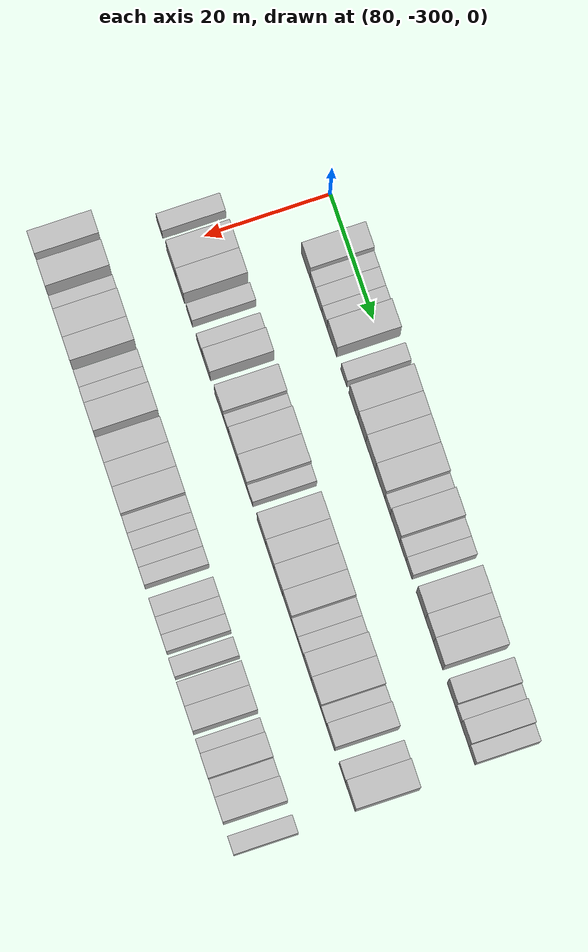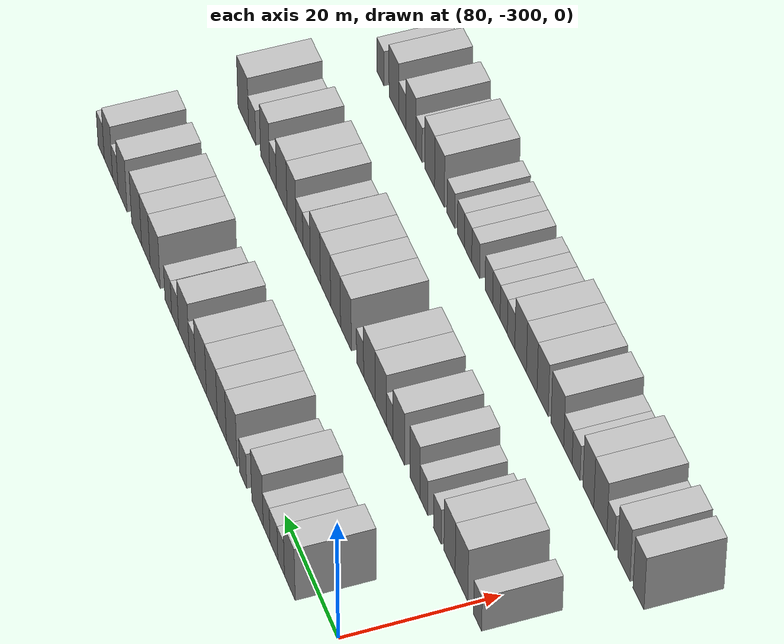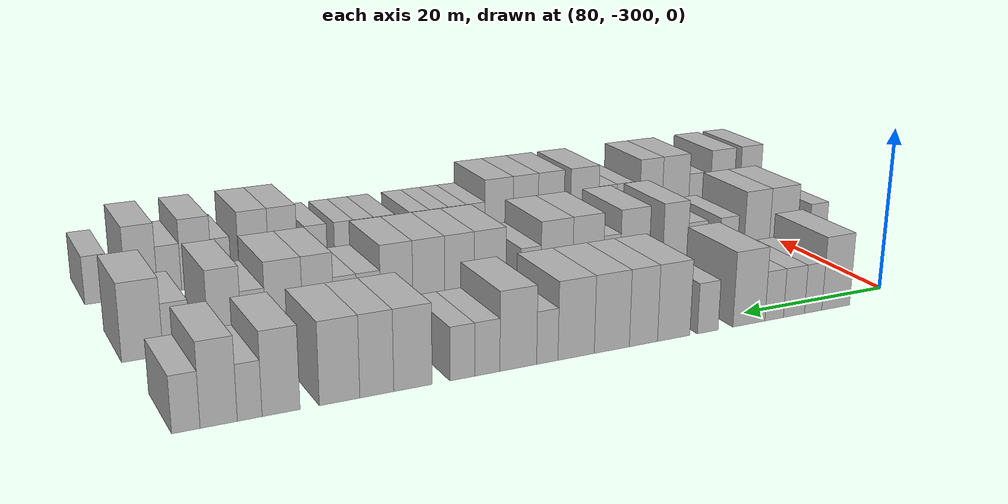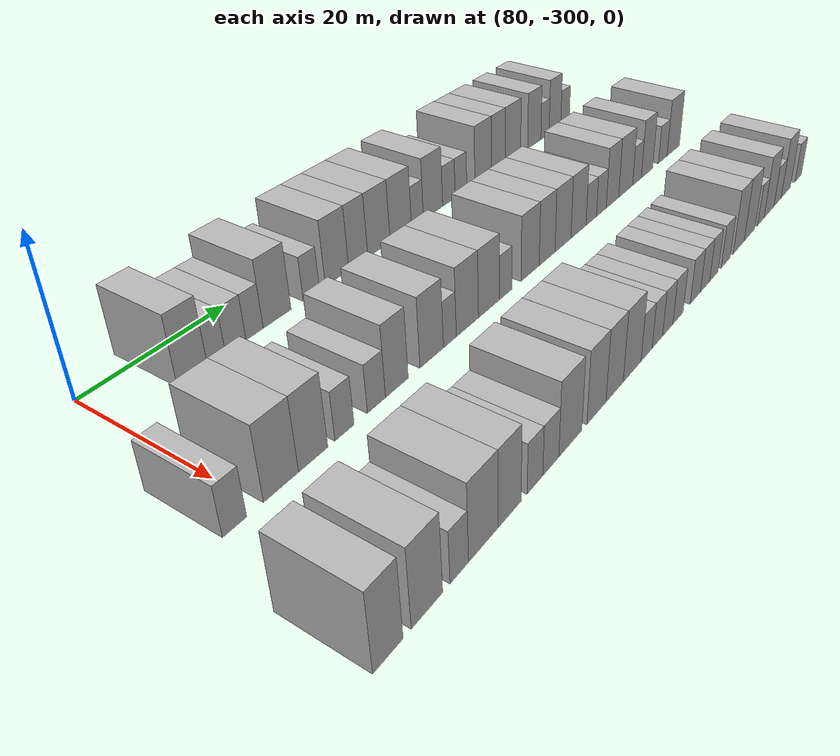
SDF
<sdf version="1.6">
 <world name="default">
  <model name="building_542">
   <static>1</static>
   <pose>82.0000 -290.8917 0 0.000000 0.000000 0.000000</pose>
   <link name="link">
    <pose>0 0 4.50 0 0 0</pose>
    <collision name="collision"><geometry><box><size>10.0000 4.0627 9.0000</size></box></geometry></collision>
    <visual name="visual">
     <cast_shadows>0</cast_shadows>
     <geometry><box><size>10.0000 4.0627 9.0000</size></box></geometry>
     <material>
      <script>
       <uri>model://HANNAS_wall/materials/scripts</uri>
       <uri>model://HANNAS_wall/materials/textures</uri>
       <name>vrc/HANNAS_wall</name>
      </script>
     </material>
    </visual>
   </link>
  </model>
  <model name="building_543">
   <static>1</static>
   <pose>82.0000 -287.6085 0 0.000000 0.000000 0.000000</pose>
   <link name="link">
    <pose>0 0 3.00 0 0 0</pose>
    <collision name="collision"><geometry><box><size>10.0000 2.5038 6.0000</size></box></geometry></collision>
    <visual name="visual">
     <cast_shadows>0</cast_shadows>
     <geometry><box><size>10.0000 2.5038 6.0000</size></box></geometry>
     <material>
      <script>
       <uri>model://HANNAS_wall/materials/scripts</uri>
       <uri>model://HANNAS_wall/materials/textures</uri>
       <name>vrc/HANNAS_wall</name>
      </script>
     </material>
    </visual>
   </link>
  </model>
  <model name="building_544">
   <static>1</static>
   <pose>82.0000 -284.8606 0 0.000000 0.000000 0.000000</pose>
   <link name="link">
    <pose>0 0 3.00 0 0 0</pose>
    <collision name="collision"><geometry><box><size>10.0000 2.9918 6.0000</size></box></geometry></collision>
    <visual name="visual">
     <cast_shadows>0</cast_shadows>
     <geometry><box><size>10.0000 2.9918 6.0000</size></box></geometry>
     <material>
      <script>
       <uri>model://HANNAS_wall/materials/scripts</uri>
       <uri>model://HANNAS_wall/materials/textures</uri>
       <name>vrc/HANNAS_wall</name>
      </script>
     </material>
    </visual>
   </link>
  </model>
  <model name="building_545">
   <static>1</static>
   <pose>82.0000 -282.0610 0 0.000000 0.000000 0.000000</pose>
   <link name="link">
    <pose>0 0 3.00 0 0 0</pose>
    <collision name="collision"><geometry><box><size>10.0000 2.6075 6.0000</size></box></geometry></collision>
    <visual name="visual">
     <cast_shadows>0</cast_shadows>
     <geometry><box><size>10.0000 2.6075 6.0000</size></box></geometry>
     <material>
      <script>
       <uri>model://HANNAS_wall/materials/scripts</uri>
       <uri>model://HANNAS_wall/materials/textures</uri>
       <name>vrc/HANNAS_wall</name>
      </script>
     </material>
    </visual>
   </link>
  </model>
  <model name="building_546">
   <static>1</static>
   <pose>82.0000 -278.5476 0 0.000000 0.000000 0.000000</pose>
   <link name="link">
    <pose>0 0 4.50 0 0 0</pose>
    <collision name="collision"><geometry><box><size>10.0000 4.4194 9.0000</size></box></geometry></collision>
    <visual name="visual">
     <cast_shadows>0</cast_shadows>
     <geometry><box><size>10.0000 4.4194 9.0000</size></box></geometry>
     <material>
      <script>
       <uri>model://HANNAS_wall/materials/scripts</uri>
       <uri>model://HANNAS_wall/materials/textures</uri>
       <name>vrc/HANNAS_wall</name>
      </script>
     </material>
    </visual>
   </link>
  </model>
  <model name="building_547">
   <static>1</static>
   <pose>82.0000 -272.9464 0 0.000000 0.000000 0.000000</pose>
   <link name="link">
    <pose>0 0 3.00 0 0 0</pose>
    <collision name="collision"><geometry><box><size>10.0000 2.7831 6.0000</size></box></geometry></collision>
    <visual name="visual">
     <cast_shadows>0</cast_shadows>
     <geometry><box><size>10.0000 2.7831 6.0000</size></box></geometry>
     <material>
      <script>
       <uri>model://HANNAS_wall/materials/scripts</uri>
       <uri>model://HANNAS_wall/materials/textures</uri>
       <name>vrc/HANNAS_wall</name>
      </script>
     </material>
    </visual>
   </link>
  </model>
  <model name="building_548">
   <static>1</static>
   <pose>82.0000 -268.4325 0 0.000000 0.000000 0.000000</pose>
   <link name="link">
    <pose>0 0 4.50 0 0 0</pose>
    <collision name="collision"><geometry><box><size>10.0000 4.2447 9.0000</size></box></geometry></collision>
    <visual name="visual">
     <cast_shadows>0</cast_shadows>
     <geometry><box><size>10.0000 4.2447 9.0000</size></box></geometry>
     <material>
      <script>
       <uri>model://HANNAS_wall/materials/scripts</uri>
       <uri>model://HANNAS_wall/materials/textures</uri>
       <name>vrc/HANNAS_wall</name>
      </script>
     </material>
    </visual>
   </link>
  </model>
  <model name="building_549">
   <static>1</static>
   <pose>82.0000 -264.5042 0 0.000000 0.000000 0.000000</pose>
   <link name="link">
    <pose>0 0 4.50 0 0 0</pose>
    <collision name="collision"><geometry><box><size>10.0000 3.6119 9.0000</size></box></geometry></collision>
    <visual name="visual">
     <cast_shadows>0</cast_shadows>
     <geometry><box><size>10.0000 3.6119 9.0000</size></box></geometry>
     <material>
      <script>
       <uri>model://HANNAS_wall/materials/scripts</uri>
       <uri>model://HANNAS_wall/materials/textures</uri>
       <name>vrc/HANNAS_wall</name>
      </script>
     </material>
    </visual>
   </link>
  </model>
  <model name="building_550">
   <static>1</static>
   <pose>82.0000 -260.4912 0 0.000000 0.000000 0.000000</pose>
   <link name="link">
    <pose>0 0 4.50 0 0 0</pose>
    <collision name="collision"><geometry><box><size>10.0000 4.4142 9.0000</size></box></geometry></collision>
    <visual name="visual">
     <cast_shadows>0</cast_shadows>
     <geometry><box><size>10.0000 4.4142 9.0000</size></box></geometry>
     <material>
      <script>
       <uri>model://HANNAS_wall/materials/scripts</uri>
       <uri>model://HANNAS_wall/materials/textures</uri>
       <name>vrc/HANNAS_wall</name>
      </script>
     </material>
    </visual>
   </link>
  </model>
  <model name="building_551">
   <static>1</static>
   <pose>82.0000 -256.0532 0 0.000000 0.000000 0.000000</pose>
   <link name="link">
    <pose>0 0 4.50 0 0 0</pose>
    <collision name="collision"><geometry><box><size>10.0000 4.4618 9.0000</size></box></geometry></collision>
    <visual name="visual">
     <cast_shadows>0</cast_shadows>
     <geometry><box><size>10.0000 4.4618 9.0000</size></box></geometry>
     <material>
      <script>
       <uri>model://HANNAS_wall/materials/scripts</uri>
       <uri>model://HANNAS_wall/materials/textures</uri>
       <name>vrc/HANNAS_wall</name>
      </script>
     </material>
    </visual>
   </link>
  </model>
  <model name="building_552">
   <static>1</static>
   <pose>82.0000 -252.5362 0 0.000000 0.000000 0.000000</pose>
   <link name="link">
    <pose>0 0 3.00 0 0 0</pose>
    <collision name="collision"><geometry><box><size>10.0000 2.5722 6.0000</size></box></geometry></collision>
    <visual name="visual">
     <cast_shadows>0</cast_shadows>
     <geometry><box><size>10.0000 2.5722 6.0000</size></box></geometry>
     <material>
      <script>
       <uri>model://HANNAS_wall/materials/scripts</uri>
       <uri>model://HANNAS_wall/materials/textures</uri>
       <name>vrc/HANNAS_wall</name>
      </script>
     </material>
    </visual>
   </link>
  </model>
  <model name="building_553">
   <static>1</static>
   <pose>82.0000 -249.0735 0 0.000000 0.000000 0.000000</pose>
   <link name="link">
    <pose>0 0 4.50 0 0 0</pose>
    <collision name="collision"><geometry><box><size>10.0000 4.3532 9.0000</size></box></geometry></collision>
    <visual name="visual">
     <cast_shadows>0</cast_shadows>
     <geometry><box><size>10.0000 4.3532 9.0000</size></box></geometry>
     <material>
      <script>
       <uri>model://HANNAS_wall/materials/scripts</uri>
       <uri>model://HANNAS_wall/materials/textures</uri>
       <name>vrc/HANNAS_wall</name>
      </script>
     </material>
    </visual>
   </link>
  </model>
  <model name="building_554">
   <static>1</static>
   <pose>82.0000 -245.4326 0 0.000000 0.000000 0.000000</pose>
   <link name="link">
    <pose>0 0 3.00 0 0 0</pose>
    <collision name="collision"><geometry><box><size>10.0000 2.9284 6.0000</size></box></geometry></collision>
    <visual name="visual">
     <cast_shadows>0</cast_shadows>
     <geometry><box><size>10.0000 2.9284 6.0000</size></box></geometry>
     <material>
      <script>
       <uri>model://HANNAS_wall/materials/scripts</uri>
       <uri>model://HANNAS_wall/materials/textures</uri>
       <name>vrc/HANNAS_wall</name>
      </script>
     </material>
    </visual>
   </link>
  </model>
  <model name="building_555">
   <static>1</static>
   <pose>82.0000 -242.5557 0 0.000000 0.000000 0.000000</pose>
   <link name="link">
    <pose>0 0 3.00 0 0 0</pose>
    <collision name="collision"><geometry><box><size>10.0000 2.8255 6.0000</size></box></geometry></collision>
    <visual name="visual">
     <cast_shadows>0</cast_shadows>
     <geometry><box><size>10.0000 2.8255 6.0000</size></box></geometry>
     <material>
      <script>
       <uri>model://HANNAS_wall/materials/scripts</uri>
       <uri>model://HANNAS_wall/materials/textures</uri>
       <name>vrc/HANNAS_wall</name>
      </script>
     </material>
    </visual>
   </link>
  </model>
  <model name="building_556">
   <static>1</static>
   <pose>82.0000 -237.0157 0 0.000000 0.000000 0.000000</pose>
   <link name="link">
    <pose>0 0 4.50 0 0 0</pose>
    <collision name="collision"><geometry><box><size>10.0000 4.2543 9.0000</size></box></geometry></collision>
    <visual name="visual">
     <cast_shadows>0</cast_shadows>
     <geometry><box><size>10.0000 4.2543 9.0000</size></box></geometry>
     <material>
      <script>
       <uri>model://HANNAS_wall/materials/scripts</uri>
       <uri>model://HANNAS_wall/materials/textures</uri>
       <name>vrc/HANNAS_wall</name>
      </script>
     </material>
    </visual>
   </link>
  </model>
  <model name="building_557">
   <static>1</static>
   <pose>82.0000 -233.0479 0 0.000000 0.000000 0.000000</pose>
   <link name="link">
    <pose>0 0 4.50 0 0 0</pose>
    <collision name="collision"><geometry><box><size>10.0000 3.6813 9.0000</size></box></geometry></collision>
    <visual name="visual">
     <cast_shadows>0</cast_shadows>
     <geometry><box><size>10.0000 3.6813 9.0000</size></box></geometry>
     <material>
      <script>
       <uri>model://HANNAS_wall/materials/scripts</uri>
       <uri>model://HANNAS_wall/materials/textures</uri>
       <name>vrc/HANNAS_wall</name>
      </script>
     </material>
    </visual>
   </link>
  </model>
  <model name="building_558">
   <static>1</static>
   <pose>82.0000 -229.0603 0 0.000000 0.000000 0.000000</pose>
   <link name="link">
    <pose>0 0 4.50 0 0 0</pose>
    <collision name="collision"><geometry><box><size>10.0000 4.2939 9.0000</size></box></geometry></collision>
    <visual name="visual">
     <cast_shadows>0</cast_shadows>
     <geometry><box><size>10.0000 4.2939 9.0000</size></box></geometry>
     <material>
      <script>
       <uri>model://HANNAS_wall/materials/scripts</uri>
       <uri>model://HANNAS_wall/materials/textures</uri>
       <name>vrc/HANNAS_wall</name>
      </script>
     </material>
    </visual>
   </link>
  </model>
  <model name="building_559">
   <static>1</static>
   <pose>82.0000 -222.9728 0 0.000000 0.000000 0.000000</pose>
   <link name="link">
    <pose>0 0 4.50 0 0 0</pose>
    <collision name="collision"><geometry><box><size>10.0000 3.8810 9.0000</size></box></geometry></collision>
    <visual name="visual">
     <cast_shadows>0</cast_shadows>
     <geometry><box><size>10.0000 3.8810 9.0000</size></box></geometry>
     <material>
      <script>
       <uri>model://HANNAS_wall/materials/scripts</uri>
       <uri>model://HANNAS_wall/materials/textures</uri>
       <name>vrc/HANNAS_wall</name>
      </script>
     </material>
    </visual>
   </link>
  </model>
  <model name="building_560">
   <static>1</static>
   <pose>82.0000 -219.7894 0 0.000000 0.000000 0.000000</pose>
   <link name="link">
    <pose>0 0 3.00 0 0 0</pose>
    <collision name="collision"><geometry><box><size>10.0000 2.4858 6.0000</size></box></geometry></collision>
    <visual name="visual">
     <cast_shadows>0</cast_shadows>
     <geometry><box><size>10.0000 2.4858 6.0000</size></box></geometry>
     <material>
      <script>
       <uri>model://HANNAS_wall/materials/scripts</uri>
       <uri>model://HANNAS_wall/materials/textures</uri>
       <name>vrc/HANNAS_wall</name>
      </script>
     </material>
    </visual>
   </link>
  </model>
  <model name="building_561">
   <static>1</static>
   <pose>82.0000 -216.7074 0 0.000000 0.000000 0.000000</pose>
   <link name="link">
    <pose>0 0 4.50 0 0 0</pose>
    <collision name="collision"><geometry><box><size>10.0000 3.6781 9.0000</size></box></geometry></collision>
    <visual name="visual">
     <cast_shadows>0</cast_shadows>
     <geometry><box><size>10.0000 3.6781 9.0000</size></box></geometry>
     <material>
      <script>
       <uri>model://HANNAS_wall/materials/scripts</uri>
       <uri>model://HANNAS_wall/materials/textures</uri>
       <name>vrc/HANNAS_wall</name>
      </script>
     </material>
    </visual>
   </link>
  </model>
  <model name="building_562">
   <static>1</static>
   <pose>82.0000 -213.4852 0 0.000000 0.000000 0.000000</pose>
   <link name="link">
    <pose>0 0 3.00 0 0 0</pose>
    <collision name="collision"><geometry><box><size>10.0000 2.7663 6.0000</size></box></geometry></collision>
    <visual name="visual">
     <cast_shadows>0</cast_shadows>
     <geometry><box><size>10.0000 2.7663 6.0000</size></box></geometry>
     <material>
      <script>
       <uri>model://HANNAS_wall/materials/scripts</uri>
       <uri>model://HANNAS_wall/materials/textures</uri>
       <name>vrc/HANNAS_wall</name>
      </script>
     </material>
    </visual>
   </link>
  </model>
  <model name="building_717">
   <static>1</static>
   <pose>101.0000 -303.0050 0 0.000000 0.000000 0.000000</pose>
   <link name="link">
    <pose>0 0 3.00 0 0 0</pose>
    <collision name="collision"><geometry><box><size>10.0000 2.7919 6.0000</size></box></geometry></collision>
    <visual name="visual">
     <cast_shadows>0</cast_shadows>
     <geometry><box><size>10.0000 2.7919 6.0000</size></box></geometry>
     <material>
      <script>
       <uri>model://HANNAS_wall/materials/scripts</uri>
       <uri>model://HANNAS_wall/materials/textures</uri>
       <name>vrc/HANNAS_wall</name>
      </script>
     </material>
    </visual>
   </link>
  </model>
  <model name="building_718">
   <static>1</static>
   <pose>101.0000 -297.3794 0 0.000000 0.000000 0.000000</pose>
   <link name="link">
    <pose>0 0 4.50 0 0 0</pose>
    <collision name="collision"><geometry><box><size>10.0000 4.4592 9.0000</size></box></geometry></collision>
    <visual name="visual">
     <cast_shadows>0</cast_shadows>
     <geometry><box><size>10.0000 4.4592 9.0000</size></box></geometry>
     <material>
      <script>
       <uri>model://HANNAS_wall/materials/scripts</uri>
       <uri>model://HANNAS_wall/materials/textures</uri>
       <name>vrc/HANNAS_wall</name>
      </script>
     </material>
    </visual>
   </link>
  </model>
  <model name="building_719">
   <static>1</static>
   <pose>101.0000 -293.1706 0 0.000000 0.000000 0.000000</pose>
   <link name="link">
    <pose>0 0 4.50 0 0 0</pose>
    <collision name="collision"><geometry><box><size>10.0000 3.9584 9.0000</size></box></geometry></collision>
    <visual name="visual">
     <cast_shadows>0</cast_shadows>
     <geometry><box><size>10.0000 3.9584 9.0000</size></box></geometry>
     <material>
      <script>
       <uri>model://HANNAS_wall/materials/scripts</uri>
       <uri>model://HANNAS_wall/materials/textures</uri>
       <name>vrc/HANNAS_wall</name>
      </script>
     </material>
    </visual>
   </link>
  </model>
  <model name="building_720">
   <static>1</static>
   <pose>101.0000 -288.8042 0 0.000000 0.000000 0.000000</pose>
   <link name="link">
    <pose>0 0 3.00 0 0 0</pose>
    <collision name="collision"><geometry><box><size>10.0000 2.7744 6.0000</size></box></geometry></collision>
    <visual name="visual">
     <cast_shadows>0</cast_shadows>
     <geometry><box><size>10.0000 2.7744 6.0000</size></box></geometry>
     <material>
      <script>
       <uri>model://HANNAS_wall/materials/scripts</uri>
       <uri>model://HANNAS_wall/materials/textures</uri>
       <name>vrc/HANNAS_wall</name>
      </script>
     </material>
    </visual>
   </link>
  </model>
  <model name="building_721">
   <static>1</static>
   <pose>101.0000 -283.9977 0 0.000000 0.000000 0.000000</pose>
   <link name="link">
    <pose>0 0 3.00 0 0 0</pose>
    <collision name="collision"><geometry><box><size>10.0000 2.8385 6.0000</size></box></geometry></collision>
    <visual name="visual">
     <cast_shadows>0</cast_shadows>
     <geometry><box><size>10.0000 2.8385 6.0000</size></box></geometry>
     <material>
      <script>
       <uri>model://HANNAS_wall/materials/scripts</uri>
       <uri>model://HANNAS_wall/materials/textures</uri>
       <name>vrc/HANNAS_wall</name>
      </script>
     </material>
    </visual>
   </link>
  </model>
  <model name="building_722">
   <static>1</static>
   <pose>101.0000 -280.7215 0 0.000000 0.000000 0.000000</pose>
   <link name="link">
    <pose>0 0 4.50 0 0 0</pose>
    <collision name="collision"><geometry><box><size>10.0000 3.7140 9.0000</size></box></geometry></collision>
    <visual name="visual">
     <cast_shadows>0</cast_shadows>
     <geometry><box><size>10.0000 3.7140 9.0000</size></box></geometry>
     <material>
      <script>
       <uri>model://HANNAS_wall/materials/scripts</uri>
       <uri>model://HANNAS_wall/materials/textures</uri>
       <name>vrc/HANNAS_wall</name>
      </script>
     </material>
    </visual>
   </link>
  </model>
  <model name="building_723">
   <static>1</static>
   <pose>101.0000 -274.7720 0 0.000000 0.000000 0.000000</pose>
   <link name="link">
    <pose>0 0 4.50 0 0 0</pose>
    <collision name="collision"><geometry><box><size>10.0000 4.1851 9.0000</size></box></geometry></collision>
    <visual name="visual">
     <cast_shadows>0</cast_shadows>
     <geometry><box><size>10.0000 4.1851 9.0000</size></box></geometry>
     <material>
      <script>
       <uri>model://HANNAS_wall/materials/scripts</uri>
       <uri>model://HANNAS_wall/materials/textures</uri>
       <name>vrc/HANNAS_wall</name>
      </script>
     </material>
    </visual>
   </link>
  </model>
  <model name="building_724">
   <static>1</static>
   <pose>101.0000 -271.4790 0 0.000000 0.000000 0.000000</pose>
   <link name="link">
    <pose>0 0 3.00 0 0 0</pose>
    <collision name="collision"><geometry><box><size>10.0000 2.4008 6.0000</size></box></geometry></collision>
    <visual name="visual">
     <cast_shadows>0</cast_shadows>
     <geometry><box><size>10.0000 2.4008 6.0000</size></box></geometry>
     <material>
      <script>
       <uri>model://HANNAS_wall/materials/scripts</uri>
       <uri>model://HANNAS_wall/materials/textures</uri>
       <name>vrc/HANNAS_wall</name>
      </script>
     </material>
    </visual>
   </link>
  </model>
  <model name="building_725">
   <static>1</static>
   <pose>101.0000 -268.1192 0 0.000000 0.000000 0.000000</pose>
   <link name="link">
    <pose>0 0 4.50 0 0 0</pose>
    <collision name="collision"><geometry><box><size>10.0000 4.3189 9.0000</size></box></geometry></collision>
    <visual name="visual">
     <cast_shadows>0</cast_shadows>
     <geometry><box><size>10.0000 4.3189 9.0000</size></box></geometry>
     <material>
      <script>
       <uri>model://HANNAS_wall/materials/scripts</uri>
       <uri>model://HANNAS_wall/materials/textures</uri>
       <name>vrc/HANNAS_wall</name>
      </script>
     </material>
    </visual>
   </link>
  </model>
  <model name="building_726">
   <static>1</static>
   <pose>101.0000 -263.7859 0 0.000000 0.000000 0.000000</pose>
   <link name="link">
    <pose>0 0 4.50 0 0 0</pose>
    <collision name="collision"><geometry><box><size>10.0000 4.3476 9.0000</size></box></geometry></collision>
    <visual name="visual">
     <cast_shadows>0</cast_shadows>
     <geometry><box><size>10.0000 4.3476 9.0000</size></box></geometry>
     <material>
      <script>
       <uri>model://HANNAS_wall/materials/scripts</uri>
       <uri>model://HANNAS_wall/materials/textures</uri>
       <name>vrc/HANNAS_wall</name>
      </script>
     </material>
    </visual>
   </link>
  </model>
  <model name="building_727">
   <static>1</static>
   <pose>101.0000 -260.2628 0 0.000000 0.000000 0.000000</pose>
   <link name="link">
    <pose>0 0 3.00 0 0 0</pose>
    <collision name="collision"><geometry><box><size>10.0000 2.6985 6.0000</size></box></geometry></collision>
    <visual name="visual">
     <cast_shadows>0</cast_shadows>
     <geometry><box><size>10.0000 2.6985 6.0000</size></box></geometry>
     <material>
      <script>
       <uri>model://HANNAS_wall/materials/scripts</uri>
       <uri>model://HANNAS_wall/materials/textures</uri>
       <name>vrc/HANNAS_wall</name>
      </script>
     </material>
    </visual>
   </link>
  </model>
  <model name="building_728">
   <static>1</static>
   <pose>101.0000 -254.8297 0 0.000000 0.000000 0.000000</pose>
   <link name="link">
    <pose>0 0 4.50 0 0 0</pose>
    <collision name="collision"><geometry><box><size>10.0000 4.1678 9.0000</size></box></geometry></collision>
    <visual name="visual">
     <cast_shadows>0</cast_shadows>
     <geometry><box><size>10.0000 4.1678 9.0000</size></box></geometry>
     <material>
      <script>
       <uri>model://HANNAS_wall/materials/scripts</uri>
       <uri>model://HANNAS_wall/materials/textures</uri>
       <name>vrc/HANNAS_wall</name>
      </script>
     </material>
    </visual>
   </link>
  </model>
  <model name="building_729">
   <static>1</static>
   <pose>101.0000 -250.8270 0 0.000000 0.000000 0.000000</pose>
   <link name="link">
    <pose>0 0 4.50 0 0 0</pose>
    <collision name="collision"><geometry><box><size>10.0000 3.8375 9.0000</size></box></geometry></collision>
    <visual name="visual">
     <cast_shadows>0</cast_shadows>
     <geometry><box><size>10.0000 3.8375 9.0000</size></box></geometry>
     <material>
      <script>
       <uri>model://HANNAS_wall/materials/scripts</uri>
       <uri>model://HANNAS_wall/materials/textures</uri>
       <name>vrc/HANNAS_wall</name>
      </script>
     </material>
    </visual>
   </link>
  </model>
  <model name="building_730">
   <static>1</static>
   <pose>101.0000 -246.8891 0 0.000000 0.000000 0.000000</pose>
   <link name="link">
    <pose>0 0 4.50 0 0 0</pose>
    <collision name="collision"><geometry><box><size>10.0000 4.0384 9.0000</size></box></geometry></collision>
    <visual name="visual">
     <cast_shadows>0</cast_shadows>
     <geometry><box><size>10.0000 4.0384 9.0000</size></box></geometry>
     <material>
      <script>
       <uri>model://HANNAS_wall/materials/scripts</uri>
       <uri>model://HANNAS_wall/materials/textures</uri>
       <name>vrc/HANNAS_wall</name>
      </script>
     </material>
    </visual>
   </link>
  </model>
  <model name="building_731">
   <static>1</static>
   <pose>101.0000 -242.8564 0 0.000000 0.000000 0.000000</pose>
   <link name="link">
    <pose>0 0 4.50 0 0 0</pose>
    <collision name="collision"><geometry><box><size>10.0000 4.0271 9.0000</size></box></geometry></collision>
    <visual name="visual">
     <cast_shadows>0</cast_shadows>
     <geometry><box><size>10.0000 4.0271 9.0000</size></box></geometry>
     <material>
      <script>
       <uri>model://HANNAS_wall/materials/scripts</uri>
       <uri>model://HANNAS_wall/materials/textures</uri>
       <name>vrc/HANNAS_wall</name>
      </script>
     </material>
    </visual>
   </link>
  </model>
  <model name="building_732">
   <static>1</static>
   <pose>101.0000 -239.3913 0 0.000000 0.000000 0.000000</pose>
   <link name="link">
    <pose>0 0 3.00 0 0 0</pose>
    <collision name="collision"><geometry><box><size>10.0000 2.9031 6.0000</size></box></geometry></collision>
    <visual name="visual">
     <cast_shadows>0</cast_shadows>
     <geometry><box><size>10.0000 2.9031 6.0000</size></box></geometry>
     <material>
      <script>
       <uri>model://HANNAS_wall/materials/scripts</uri>
       <uri>model://HANNAS_wall/materials/textures</uri>
       <name>vrc/HANNAS_wall</name>
      </script>
     </material>
    </visual>
   </link>
  </model>
  <model name="building_733">
   <static>1</static>
   <pose>101.0000 -236.5523 0 0.000000 0.000000 0.000000</pose>
   <link name="link">
    <pose>0 0 3.00 0 0 0</pose>
    <collision name="collision"><geometry><box><size>10.0000 2.7750 6.0000</size></box></geometry></collision>
    <visual name="visual">
     <cast_shadows>0</cast_shadows>
     <geometry><box><size>10.0000 2.7750 6.0000</size></box></geometry>
     <material>
      <script>
       <uri>model://HANNAS_wall/materials/scripts</uri>
       <uri>model://HANNAS_wall/materials/textures</uri>
       <name>vrc/HANNAS_wall</name>
      </script>
     </material>
    </visual>
   </link>
  </model>
  <model name="building_734">
   <static>1</static>
   <pose>101.0000 -233.3310 0 0.000000 0.000000 0.000000</pose>
   <link name="link">
    <pose>0 0 4.50 0 0 0</pose>
    <collision name="collision"><geometry><box><size>10.0000 3.6675 9.0000</size></box></geometry></collision>
    <visual name="visual">
     <cast_shadows>0</cast_shadows>
     <geometry><box><size>10.0000 3.6675 9.0000</size></box></geometry>
     <material>
      <script>
       <uri>model://HANNAS_wall/materials/scripts</uri>
       <uri>model://HANNAS_wall/materials/textures</uri>
       <name>vrc/HANNAS_wall</name>
      </script>
     </material>
    </visual>
   </link>
  </model>
  <model name="building_735">
   <static>1</static>
   <pose>101.0000 -229.3396 0 0.000000 0.000000 0.000000</pose>
   <link name="link">
    <pose>0 0 4.50 0 0 0</pose>
    <collision name="collision"><geometry><box><size>10.0000 4.3154 9.0000</size></box></geometry></collision>
    <visual name="visual">
     <cast_shadows>0</cast_shadows>
     <geometry><box><size>10.0000 4.3154 9.0000</size></box></geometry>
     <material>
      <script>
       <uri>model://HANNAS_wall/materials/scripts</uri>
       <uri>model://HANNAS_wall/materials/textures</uri>
       <name>vrc/HANNAS_wall</name>
      </script>
     </material>
    </visual>
   </link>
  </model>
  <model name="building_736">
   <static>1</static>
   <pose>101.0000 -225.7899 0 0.000000 0.000000 0.000000</pose>
   <link name="link">
    <pose>0 0 3.00 0 0 0</pose>
    <collision name="collision"><geometry><box><size>10.0000 2.7839 6.0000</size></box></geometry></collision>
    <visual name="visual">
     <cast_shadows>0</cast_shadows>
     <geometry><box><size>10.0000 2.7839 6.0000</size></box></geometry>
     <material>
      <script>
       <uri>model://HANNAS_wall/materials/scripts</uri>
       <uri>model://HANNAS_wall/materials/textures</uri>
       <name>vrc/HANNAS_wall</name>
      </script>
     </material>
    </visual>
   </link>
  </model>
  <model name="building_737">
   <static>1</static>
   <pose>101.0000 -222.5236 0 0.000000 0.000000 0.000000</pose>
   <link name="link">
    <pose>0 0 4.50 0 0 0</pose>
    <collision name="collision"><geometry><box><size>10.0000 3.7488 9.0000</size></box></geometry></collision>
    <visual name="visual">
     <cast_shadows>0</cast_shadows>
     <geometry><box><size>10.0000 3.7488 9.0000</size></box></geometry>
     <material>
      <script>
       <uri>model://HANNAS_wall/materials/scripts</uri>
       <uri>model://HANNAS_wall/materials/textures</uri>
       <name>vrc/HANNAS_wall</name>
      </script>
     </material>
    </visual>
   </link>
  </model>
  <model name="building_738">
   <static>1</static>
   <pose>101.0000 -217.1507 0 0.000000 0.000000 0.000000</pose>
   <link name="link">
    <pose>0 0 3.00 0 0 0</pose>
    <collision name="collision"><geometry><box><size>10.0000 2.9969 6.0000</size></box></geometry></collision>
    <visual name="visual">
     <cast_shadows>0</cast_shadows>
     <geometry><box><size>10.0000 2.9969 6.0000</size></box></geometry>
     <material>
      <script>
       <uri>model://HANNAS_wall/materials/scripts</uri>
       <uri>model://HANNAS_wall/materials/textures</uri>
       <name>vrc/HANNAS_wall</name>
      </script>
     </material>
    </visual>
   </link>
  </model>
  <model name="building_739">
   <static>1</static>
   <pose>101.0000 -213.4175 0 0.000000 0.000000 0.000000</pose>
   <link name="link">
    <pose>0 0 4.50 0 0 0</pose>
    <collision name="collision"><geometry><box><size>10.0000 4.4697 9.0000</size></box></geometry></collision>
    <visual name="visual">
     <cast_shadows>0</cast_shadows>
     <geometry><box><size>10.0000 4.4697 9.0000</size></box></geometry>
     <material>
      <script>
       <uri>model://HANNAS_wall/materials/scripts</uri>
       <uri>model://HANNAS_wall/materials/textures</uri>
       <name>vrc/HANNAS_wall</name>
      </script>
     </material>
    </visual>
   </link>
  </model>
  <model name="building_887">
   <static>1</static>
   <pose>120.0000 -305.6338 0 0.000000 0.000000 0.000000</pose>
   <link name="link">
    <pose>0 0 4.50 0 0 0</pose>
    <collision name="collision"><geometry><box><size>10.0000 3.6029 9.0000</size></box></geometry></collision>
    <visual name="visual">
     <cast_shadows>0</cast_shadows>
     <geometry><box><size>10.0000 3.6029 9.0000</size></box></geometry>
     <material>
      <script>
       <uri>model://HANNAS_wall/materials/scripts</uri>
       <uri>model://HANNAS_wall/materials/textures</uri>
       <name>vrc/HANNAS_wall</name>
      </script>
     </material>
    </visual>
   </link>
  </model>
  <model name="building_888">
   <static>1</static>
   <pose>120.0000 -300.7885 0 0.000000 0.000000 0.000000</pose>
   <link name="link">
    <pose>0 0 4.50 0 0 0</pose>
    <collision name="collision"><geometry><box><size>10.0000 4.0879 9.0000</size></box></geometry></collision>
    <visual name="visual">
     <cast_shadows>0</cast_shadows>
     <geometry><box><size>10.0000 4.0879 9.0000</size></box></geometry>
     <material>
      <script>
       <uri>model://HANNAS_wall/materials/scripts</uri>
       <uri>model://HANNAS_wall/materials/textures</uri>
       <name>vrc/HANNAS_wall</name>
      </script>
     </material>
    </visual>
   </link>
  </model>
  <model name="building_889">
   <static>1</static>
   <pose>120.0000 -296.4451 0 0.000000 0.000000 0.000000</pose>
   <link name="link">
    <pose>0 0 3.00 0 0 0</pose>
    <collision name="collision"><geometry><box><size>10.0000 2.5988 6.0000</size></box></geometry></collision>
    <visual name="visual">
     <cast_shadows>0</cast_shadows>
     <geometry><box><size>10.0000 2.5988 6.0000</size></box></geometry>
     <material>
      <script>
       <uri>model://HANNAS_wall/materials/scripts</uri>
       <uri>model://HANNAS_wall/materials/textures</uri>
       <name>vrc/HANNAS_wall</name>
      </script>
     </material>
    </visual>
   </link>
  </model>
  <model name="building_890">
   <static>1</static>
   <pose>120.0000 -292.9259 0 0.000000 0.000000 0.000000</pose>
   <link name="link">
    <pose>0 0 4.50 0 0 0</pose>
    <collision name="collision"><geometry><box><size>10.0000 4.4398 9.0000</size></box></geometry></collision>
    <visual name="visual">
     <cast_shadows>0</cast_shadows>
     <geometry><box><size>10.0000 4.4398 9.0000</size></box></geometry>
     <material>
      <script>
       <uri>model://HANNAS_wall/materials/scripts</uri>
       <uri>model://HANNAS_wall/materials/textures</uri>
       <name>vrc/HANNAS_wall</name>
      </script>
     </material>
    </visual>
   </link>
  </model>
  <model name="building_891">
   <static>1</static>
   <pose>120.0000 -288.8603 0 0.000000 0.000000 0.000000</pose>
   <link name="link">
    <pose>0 0 4.50 0 0 0</pose>
    <collision name="collision"><geometry><box><size>10.0000 3.6915 9.0000</size></box></geometry></collision>
    <visual name="visual">
     <cast_shadows>0</cast_shadows>
     <geometry><box><size>10.0000 3.6915 9.0000</size></box></geometry>
     <material>
      <script>
       <uri>model://HANNAS_wall/materials/scripts</uri>
       <uri>model://HANNAS_wall/materials/textures</uri>
       <name>vrc/HANNAS_wall</name>
      </script>
     </material>
    </visual>
   </link>
  </model>
  <model name="building_892">
   <static>1</static>
   <pose>120.0000 -284.6557 0 0.000000 0.000000 0.000000</pose>
   <link name="link">
    <pose>0 0 3.00 0 0 0</pose>
    <collision name="collision"><geometry><box><size>10.0000 2.7176 6.0000</size></box></geometry></collision>
    <visual name="visual">
     <cast_shadows>0</cast_shadows>
     <geometry><box><size>10.0000 2.7176 6.0000</size></box></geometry>
     <material>
      <script>
       <uri>model://HANNAS_wall/materials/scripts</uri>
       <uri>model://HANNAS_wall/materials/textures</uri>
       <name>vrc/HANNAS_wall</name>
      </script>
     </material>
    </visual>
   </link>
  </model>
  <model name="building_893">
   <static>1</static>
   <pose>120.0000 -281.8555 0 0.000000 0.000000 0.000000</pose>
   <link name="link">
    <pose>0 0 3.00 0 0 0</pose>
    <collision name="collision"><geometry><box><size>10.0000 2.8828 6.0000</size></box></geometry></collision>
    <visual name="visual">
     <cast_shadows>0</cast_shadows>
     <geometry><box><size>10.0000 2.8828 6.0000</size></box></geometry>
     <material>
      <script>
       <uri>model://HANNAS_wall/materials/scripts</uri>
       <uri>model://HANNAS_wall/materials/textures</uri>
       <name>vrc/HANNAS_wall</name>
      </script>
     </material>
    </visual>
   </link>
  </model>
  <model name="building_894">
   <static>1</static>
   <pose>120.0000 -278.2145 0 0.000000 0.000000 0.000000</pose>
   <link name="link">
    <pose>0 0 4.50 0 0 0</pose>
    <collision name="collision"><geometry><box><size>10.0000 4.3993 9.0000</size></box></geometry></collision>
    <visual name="visual">
     <cast_shadows>0</cast_shadows>
     <geometry><box><size>10.0000 4.3993 9.0000</size></box></geometry>
     <material>
      <script>
       <uri>model://HANNAS_wall/materials/scripts</uri>
       <uri>model://HANNAS_wall/materials/textures</uri>
       <name>vrc/HANNAS_wall</name>
      </script>
     </material>
    </visual>
   </link>
  </model>
  <model name="building_895">
   <static>1</static>
   <pose>120.0000 -273.0315 0 0.000000 0.000000 0.000000</pose>
   <link name="link">
    <pose>0 0 4.50 0 0 0</pose>
    <collision name="collision"><geometry><box><size>10.0000 3.9667 9.0000</size></box></geometry></collision>
    <visual name="visual">
     <cast_shadows>0</cast_shadows>
     <geometry><box><size>10.0000 3.9667 9.0000</size></box></geometry>
     <material>
      <script>
       <uri>model://HANNAS_wall/materials/scripts</uri>
       <uri>model://HANNAS_wall/materials/textures</uri>
       <name>vrc/HANNAS_wall</name>
      </script>
     </material>
    </visual>
   </link>
  </model>
  <model name="building_896">
   <static>1</static>
   <pose>120.0000 -269.1600 0 0.000000 0.000000 0.000000</pose>
   <link name="link">
    <pose>0 0 4.50 0 0 0</pose>
    <collision name="collision"><geometry><box><size>10.0000 3.7762 9.0000</size></box></geometry></collision>
    <visual name="visual">
     <cast_shadows>0</cast_shadows>
     <geometry><box><size>10.0000 3.7762 9.0000</size></box></geometry>
     <material>
      <script>
       <uri>model://HANNAS_wall/materials/scripts</uri>
       <uri>model://HANNAS_wall/materials/textures</uri>
       <name>vrc/HANNAS_wall</name>
      </script>
     </material>
    </visual>
   </link>
  </model>
  <model name="building_897">
   <static>1</static>
   <pose>120.0000 -265.1972 0 0.000000 0.000000 0.000000</pose>
   <link name="link">
    <pose>0 0 4.50 0 0 0</pose>
    <collision name="collision"><geometry><box><size>10.0000 4.1495 9.0000</size></box></geometry></collision>
    <visual name="visual">
     <cast_shadows>0</cast_shadows>
     <geometry><box><size>10.0000 4.1495 9.0000</size></box></geometry>
     <material>
      <script>
       <uri>model://HANNAS_wall/materials/scripts</uri>
       <uri>model://HANNAS_wall/materials/textures</uri>
       <name>vrc/HANNAS_wall</name>
      </script>
     </material>
    </visual>
   </link>
  </model>
  <model name="building_898">
   <static>1</static>
   <pose>120.0000 -261.7738 0 0.000000 0.000000 0.000000</pose>
   <link name="link">
    <pose>0 0 3.00 0 0 0</pose>
    <collision name="collision"><geometry><box><size>10.0000 2.6971 6.0000</size></box></geometry></collision>
    <visual name="visual">
     <cast_shadows>0</cast_shadows>
     <geometry><box><size>10.0000 2.6971 6.0000</size></box></geometry>
     <material>
      <script>
       <uri>model://HANNAS_wall/materials/scripts</uri>
       <uri>model://HANNAS_wall/materials/textures</uri>
       <name>vrc/HANNAS_wall</name>
      </script>
     </material>
    </visual>
   </link>
  </model>
  <model name="building_899">
   <static>1</static>
   <pose>120.0000 -259.1121 0 0.000000 0.000000 0.000000</pose>
   <link name="link">
    <pose>0 0 3.00 0 0 0</pose>
    <collision name="collision"><geometry><box><size>10.0000 2.6264 6.0000</size></box></geometry></collision>
    <visual name="visual">
     <cast_shadows>0</cast_shadows>
     <geometry><box><size>10.0000 2.6264 6.0000</size></box></geometry>
     <material>
      <script>
       <uri>model://HANNAS_wall/materials/scripts</uri>
       <uri>model://HANNAS_wall/materials/textures</uri>
       <name>vrc/HANNAS_wall</name>
      </script>
     </material>
    </visual>
   </link>
  </model>
  <model name="building_900">
   <static>1</static>
   <pose>120.0000 -256.4445 0 0.000000 0.000000 0.000000</pose>
   <link name="link">
    <pose>0 0 3.00 0 0 0</pose>
    <collision name="collision"><geometry><box><size>10.0000 2.7087 6.0000</size></box></geometry></collision>
    <visual name="visual">
     <cast_shadows>0</cast_shadows>
     <geometry><box><size>10.0000 2.7087 6.0000</size></box></geometry>
     <material>
      <script>
       <uri>model://HANNAS_wall/materials/scripts</uri>
       <uri>model://HANNAS_wall/materials/textures</uri>
       <name>vrc/HANNAS_wall</name>
      </script>
     </material>
    </visual>
   </link>
  </model>
  <model name="building_901">
   <static>1</static>
   <pose>120.0000 -253.6978 0 0.000000 0.000000 0.000000</pose>
   <link name="link">
    <pose>0 0 3.00 0 0 0</pose>
    <collision name="collision"><geometry><box><size>10.0000 2.7846 6.0000</size></box></geometry></collision>
    <visual name="visual">
     <cast_shadows>0</cast_shadows>
     <geometry><box><size>10.0000 2.7846 6.0000</size></box></geometry>
     <material>
      <script>
       <uri>model://HANNAS_wall/materials/scripts</uri>
       <uri>model://HANNAS_wall/materials/textures</uri>
       <name>vrc/HANNAS_wall</name>
      </script>
     </material>
    </visual>
   </link>
  </model>
  <model name="building_902">
   <static>1</static>
   <pose>120.0000 -248.8291 0 0.000000 0.000000 0.000000</pose>
   <link name="link">
    <pose>0 0 3.00 0 0 0</pose>
    <collision name="collision"><geometry><box><size>10.0000 2.9529 6.0000</size></box></geometry></collision>
    <visual name="visual">
     <cast_shadows>0</cast_shadows>
     <geometry><box><size>10.0000 2.9529 6.0000</size></box></geometry>
     <material>
      <script>
       <uri>model://HANNAS_wall/materials/scripts</uri>
       <uri>model://HANNAS_wall/materials/textures</uri>
       <name>vrc/HANNAS_wall</name>
      </script>
     </material>
    </visual>
   </link>
  </model>
  <model name="building_903">
   <static>1</static>
   <pose>120.0000 -245.9751 0 0.000000 0.000000 0.000000</pose>
   <link name="link">
    <pose>0 0 3.00 0 0 0</pose>
    <collision name="collision"><geometry><box><size>10.0000 2.7551 6.0000</size></box></geometry></collision>
    <visual name="visual">
     <cast_shadows>0</cast_shadows>
     <geometry><box><size>10.0000 2.7551 6.0000</size></box></geometry>
     <material>
      <script>
       <uri>model://HANNAS_wall/materials/scripts</uri>
       <uri>model://HANNAS_wall/materials/textures</uri>
       <name>vrc/HANNAS_wall</name>
      </script>
     </material>
    </visual>
   </link>
  </model>
  <model name="building_904">
   <static>1</static>
   <pose>120.0000 -243.2929 0 0.000000 0.000000 0.000000</pose>
   <link name="link">
    <pose>0 0 3.00 0 0 0</pose>
    <collision name="collision"><geometry><box><size>10.0000 2.6095 6.0000</size></box></geometry></collision>
    <visual name="visual">
     <cast_shadows>0</cast_shadows>
     <geometry><box><size>10.0000 2.6095 6.0000</size></box></geometry>
     <material>
      <script>
       <uri>model://HANNAS_wall/materials/scripts</uri>
       <uri>model://HANNAS_wall/materials/textures</uri>
       <name>vrc/HANNAS_wall</name>
      </script>
     </material>
    </visual>
   </link>
  </model>
  <model name="building_905">
   <static>1</static>
   <pose>120.0000 -239.5252 0 0.000000 0.000000 0.000000</pose>
   <link name="link">
    <pose>0 0 3.00 0 0 0</pose>
    <collision name="collision"><geometry><box><size>10.0000 2.9258 6.0000</size></box></geometry></collision>
    <visual name="visual">
     <cast_shadows>0</cast_shadows>
     <geometry><box><size>10.0000 2.9258 6.0000</size></box></geometry>
     <material>
      <script>
       <uri>model://HANNAS_wall/materials/scripts</uri>
       <uri>model://HANNAS_wall/materials/textures</uri>
       <name>vrc/HANNAS_wall</name>
      </script>
     </material>
    </visual>
   </link>
  </model>
  <model name="building_906">
   <static>1</static>
   <pose>120.0000 -235.1911 0 0.000000 0.000000 0.000000</pose>
   <link name="link">
    <pose>0 0 4.50 0 0 0</pose>
    <collision name="collision"><geometry><box><size>10.0000 3.7423 9.0000</size></box></geometry></collision>
    <visual name="visual">
     <cast_shadows>0</cast_shadows>
     <geometry><box><size>10.0000 3.7423 9.0000</size></box></geometry>
     <material>
      <script>
       <uri>model://HANNAS_wall/materials/scripts</uri>
       <uri>model://HANNAS_wall/materials/textures</uri>
       <name>vrc/HANNAS_wall</name>
      </script>
     </material>
    </visual>
   </link>
  </model>
  <model name="building_907">
   <static>1</static>
   <pose>120.0000 -231.4062 0 0.000000 0.000000 0.000000</pose>
   <link name="link">
    <pose>0 0 4.50 0 0 0</pose>
    <collision name="collision"><geometry><box><size>10.0000 3.8276 9.0000</size></box></geometry></collision>
    <visual name="visual">
     <cast_shadows>0</cast_shadows>
     <geometry><box><size>10.0000 3.8276 9.0000</size></box></geometry>
     <material>
      <script>
       <uri>model://HANNAS_wall/materials/scripts</uri>
       <uri>model://HANNAS_wall/materials/textures</uri>
       <name>vrc/HANNAS_wall</name>
      </script>
     </material>
    </visual>
   </link>
  </model>
  <model name="building_908">
   <static>1</static>
   <pose>120.0000 -227.2878 0 0.000000 0.000000 0.000000</pose>
   <link name="link">
    <pose>0 0 3.00 0 0 0</pose>
    <collision name="collision"><geometry><box><size>10.0000 2.4092 6.0000</size></box></geometry></collision>
    <visual name="visual">
     <cast_shadows>0</cast_shadows>
     <geometry><box><size>10.0000 2.4092 6.0000</size></box></geometry>
     <material>
      <script>
       <uri>model://HANNAS_wall/materials/scripts</uri>
       <uri>model://HANNAS_wall/materials/textures</uri>
       <name>vrc/HANNAS_wall</name>
      </script>
     </material>
    </visual>
   </link>
  </model>
  <model name="building_909">
   <static>1</static>
   <pose>120.0000 -224.1719 0 0.000000 0.000000 0.000000</pose>
   <link name="link">
    <pose>0 0 4.50 0 0 0</pose>
    <collision name="collision"><geometry><box><size>10.0000 3.8226 9.0000</size></box></geometry></collision>
    <visual name="visual">
     <cast_shadows>0</cast_shadows>
     <geometry><box><size>10.0000 3.8226 9.0000</size></box></geometry>
     <material>
      <script>
       <uri>model://HANNAS_wall/materials/scripts</uri>
       <uri>model://HANNAS_wall/materials/textures</uri>
       <name>vrc/HANNAS_wall</name>
      </script>
     </material>
    </visual>
   </link>
  </model>
  <model name="building_910">
   <static>1</static>
   <pose>120.0000 -220.7992 0 0.000000 0.000000 0.000000</pose>
   <link name="link">
    <pose>0 0 3.00 0 0 0</pose>
    <collision name="collision"><geometry><box><size>10.0000 2.9228 6.0000</size></box></geometry></collision>
    <visual name="visual">
     <cast_shadows>0</cast_shadows>
     <geometry><box><size>10.0000 2.9228 6.0000</size></box></geometry>
     <material>
      <script>
       <uri>model://HANNAS_wall/materials/scripts</uri>
       <uri>model://HANNAS_wall/materials/textures</uri>
       <name>vrc/HANNAS_wall</name>
      </script>
     </material>
    </visual>
   </link>
  </model>
  <model name="building_911">
   <static>1</static>
   <pose>120.0000 -217.4312 0 0.000000 0.000000 0.000000</pose>
   <link name="link">
    <pose>0 0 4.50 0 0 0</pose>
    <collision name="collision"><geometry><box><size>10.0000 3.8130 9.0000</size></box></geometry></collision>
    <visual name="visual">
     <cast_shadows>0</cast_shadows>
     <geometry><box><size>10.0000 3.8130 9.0000</size></box></geometry>
     <material>
      <script>
       <uri>model://HANNAS_wall/materials/scripts</uri>
       <uri>model://HANNAS_wall/materials/textures</uri>
       <name>vrc/HANNAS_wall</name>
      </script>
     </material>
    </visual>
   </link>
  </model>
  <model name="building_912">
   <static>1</static>
   <pose>120.0000 -212.0963 0 0.000000 0.000000 0.000000</pose>
   <link name="link">
    <pose>0 0 3.00 0 0 0</pose>
    <collision name="collision"><geometry><box><size>10.0000 2.8569 6.0000</size></box></geometry></collision>
    <visual name="visual">
     <cast_shadows>0</cast_shadows>
     <geometry><box><size>10.0000 2.8569 6.0000</size></box></geometry>
     <material>
      <script>
       <uri>model://HANNAS_wall/materials/scripts</uri>
       <uri>model://HANNAS_wall/materials/textures</uri>
       <name>vrc/HANNAS_wall</name>
      </script>
     </material>
    </visual>
   </link>
  </model>
 </world>
</sdf>
